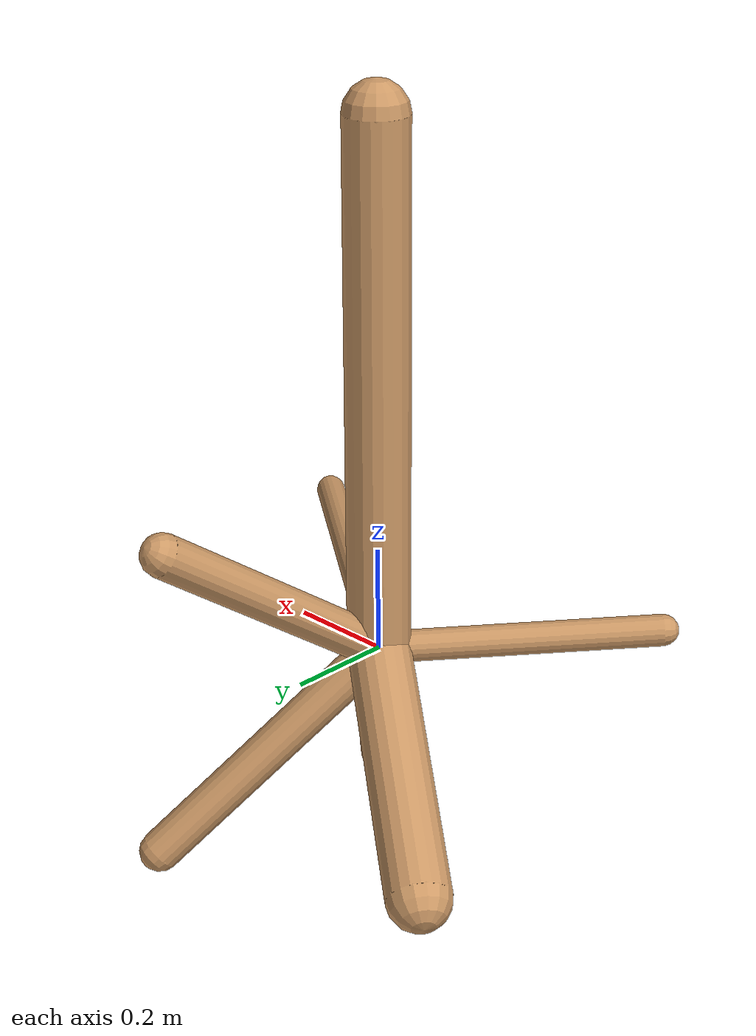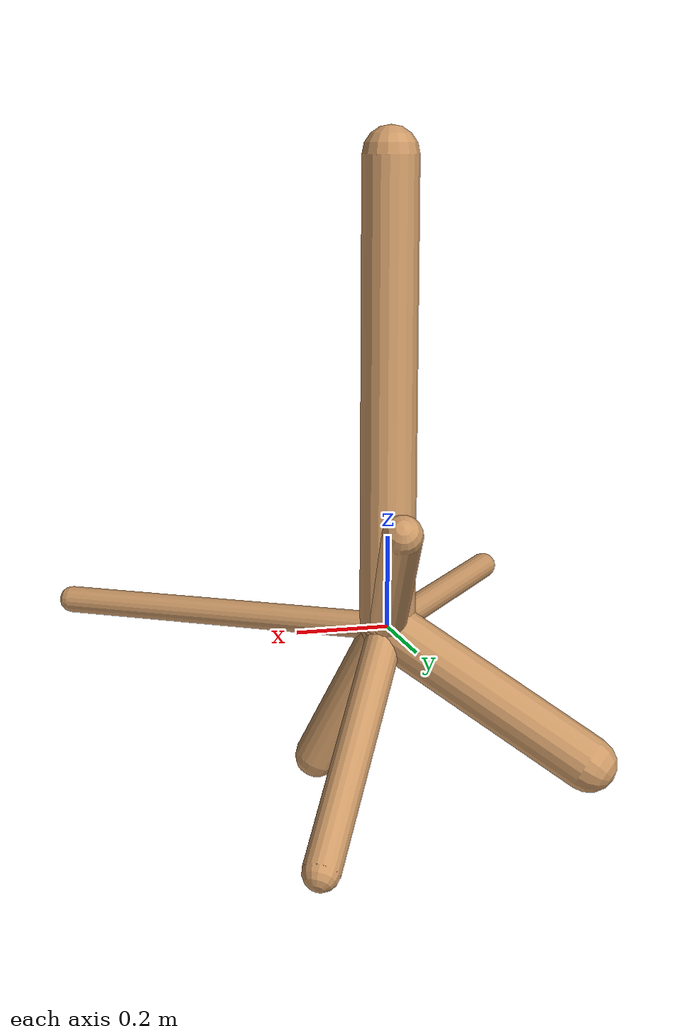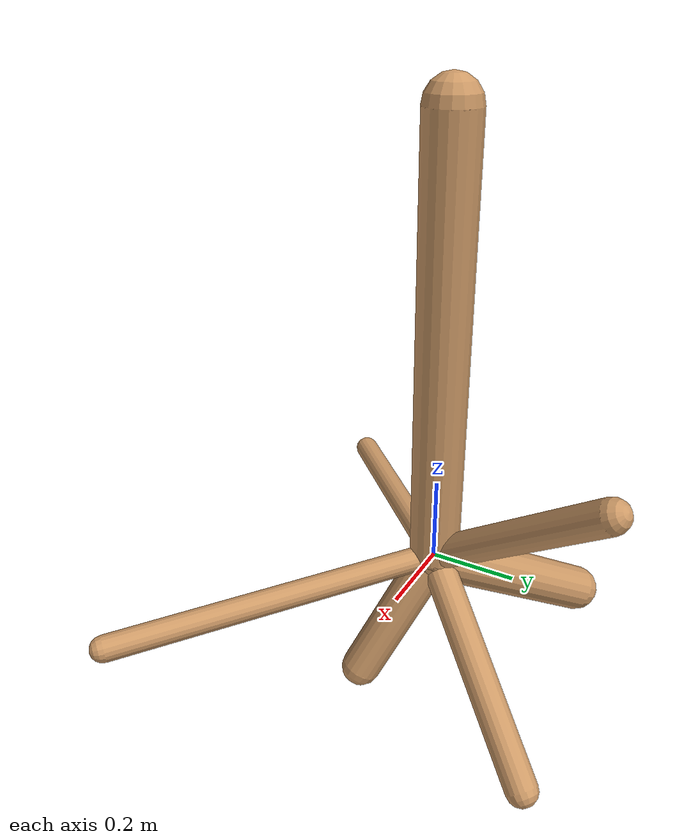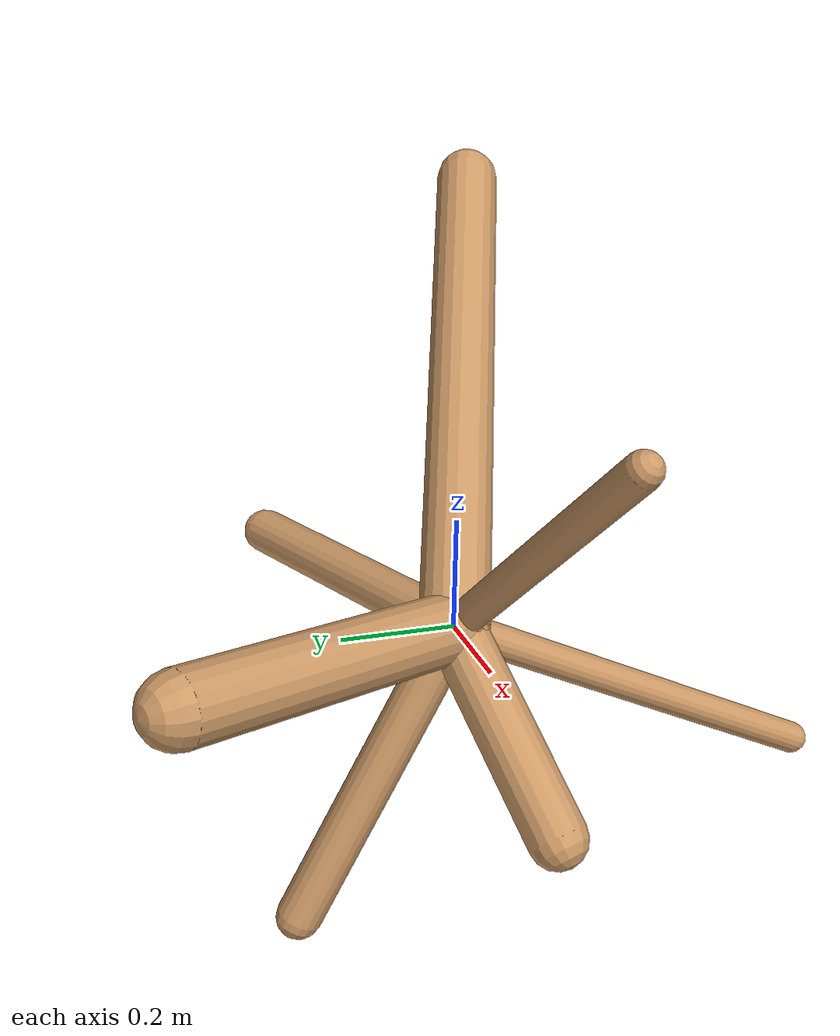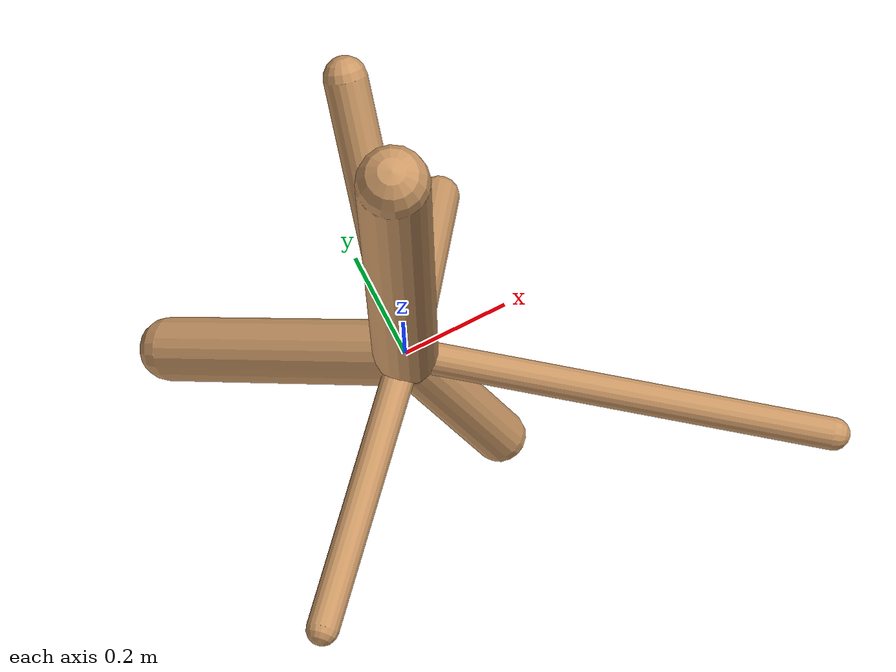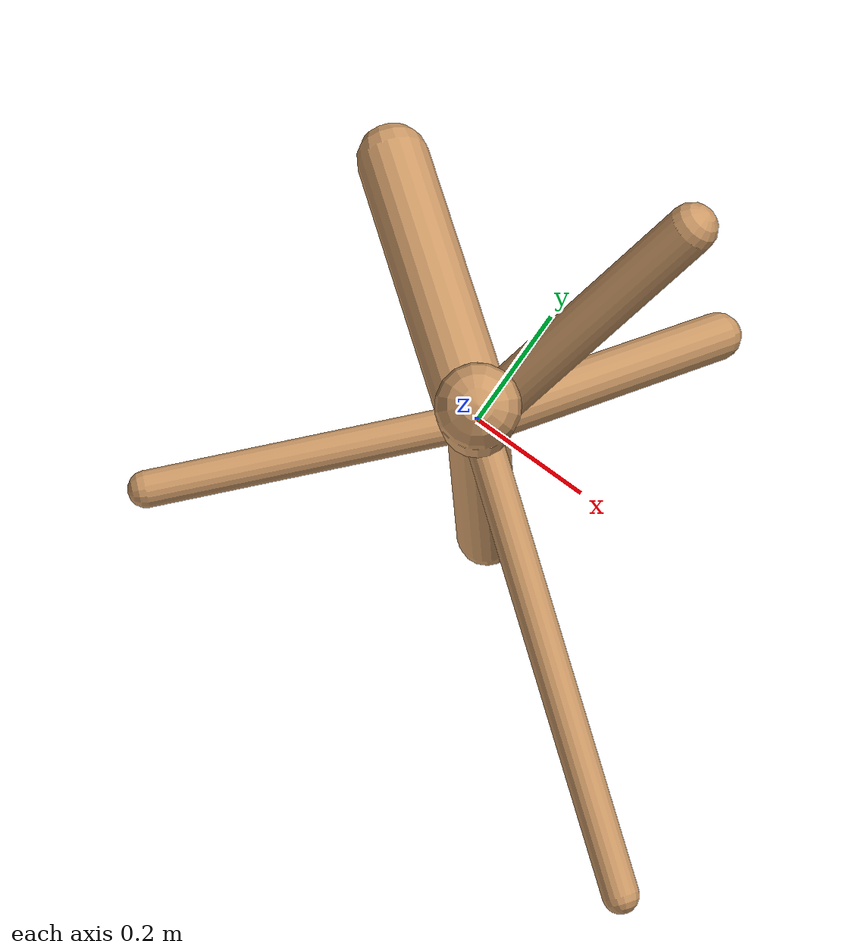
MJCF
<!--
                    joint_number: 6
                    -->
                    <mujoco model="randomrobot">
                        <compiler angle="degree" coordinate="global" inertiafromgeom="true"/>
                        <default>
                        <joint armature="0.01" damping=".1" limited="true"/>
                        <geom conaffinity="0" condim="3" contype="1" density="1000" friction="0.8 .1 .1" rgba="0.8 0.6 .4 1"/>
                        </default>
                        <option integrator="RK4" timestep="0.002"/>
                        <worldbody>
                    <body name='torso' pos='0.00 0.00 0.60'><geom fromto='0 0 0 0.00 0.00 1.00' name='torso_geom' size='0.06' type='capsule'/><inertial mass='0.3'/><body name='L0_D1' pos='0.00 0.00 0.72'><joint axis='1 0 0' name='L0_D1_joint' pos='0 0 0' range='20.30 175.37' type='hinge'/><geom fromto='0 0 0 0.62 -0.48 -0.02' name='L0_D1_geom' size='0.03' type='capsule'/><inertial mass='0.3'/><body name='L1_D0' pos='0.51 -0.39 -0.01'><joint axis='0 1 0' name='L1_D0_joint' pos='0 0 0' range='9.02 160.35' type='hinge'/><geom fromto='0 0 0 -0.36 -0.39 0.02' name='L1_D0_geom' size='0.03' type='capsule'/><inertial mass='0.3'/></body><body name='L2_D0' pos='0.54 -0.42 -0.02'><joint axis='0 0 1' name='L2_D0_joint' pos='0 0 0' range='39.56 86.12' type='hinge'/><geom fromto='0 0 0 -0.36 0.27 -0.25' name='L2_D0_geom' size='0.06' type='capsule'/><inertial mass='0.3'/></body><body name='L3_D0' pos='0.04 -0.03 -0.00'><joint axis='1 0 0' name='L3_D0_joint' pos='0 0 0' range='123.34 135.55' type='hinge'/><geom fromto='0 0 0 0.24 0.35 -0.39' name='L3_D0_geom' size='0.04' type='capsule'/><inertial mass='0.3'/></body></body><body name='L4_D1' pos='0.00 0.00 0.28'><joint axis='0 0 1' name='L4_D1_joint' pos='0 0 0' range='133.30 140.43' type='hinge'/><geom fromto='0 0 0 0.10 0.42 0.30' name='L4_D1_geom' size='0.04' type='capsule'/><inertial mass='0.3'/><body name='L5_D0' pos='0.09 0.36 0.25'><joint axis='1 0 0' name='L5_D0_joint' pos='0 0 0' range='22.57 111.06' type='hinge'/><geom fromto='0 0 0 0.12 -0.14 -0.33' name='L5_D0_geom' size='0.05' type='capsule'/><inertial mass='0.3'/></body></body></body>
                        </worldbody>
                    </mujoco>
